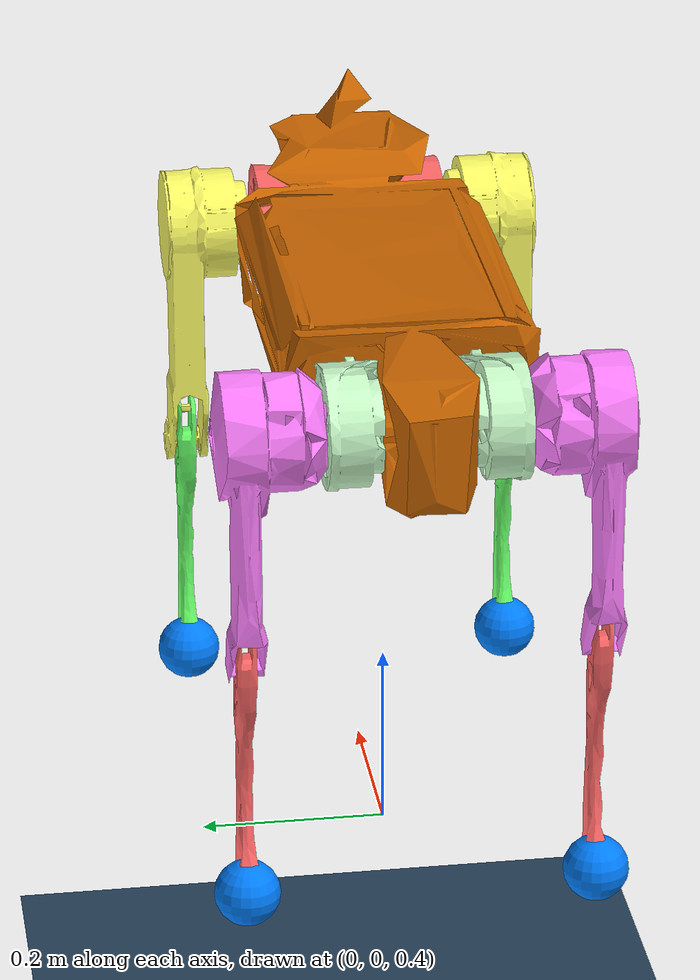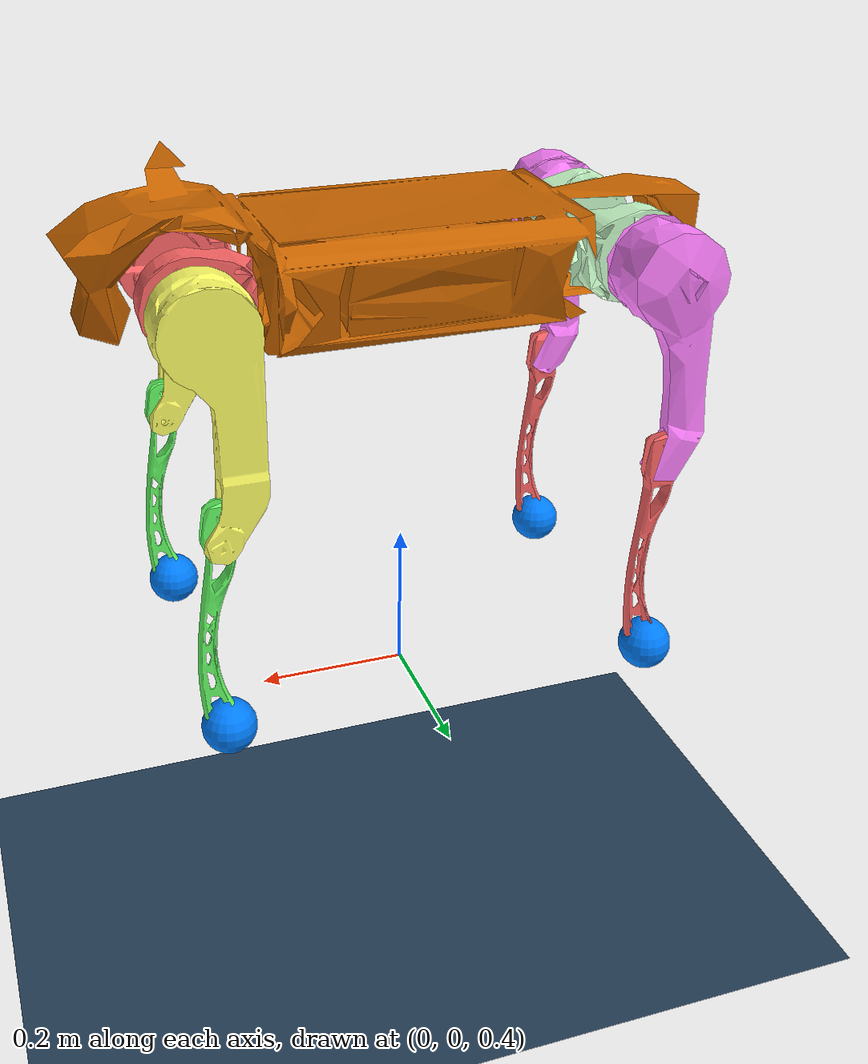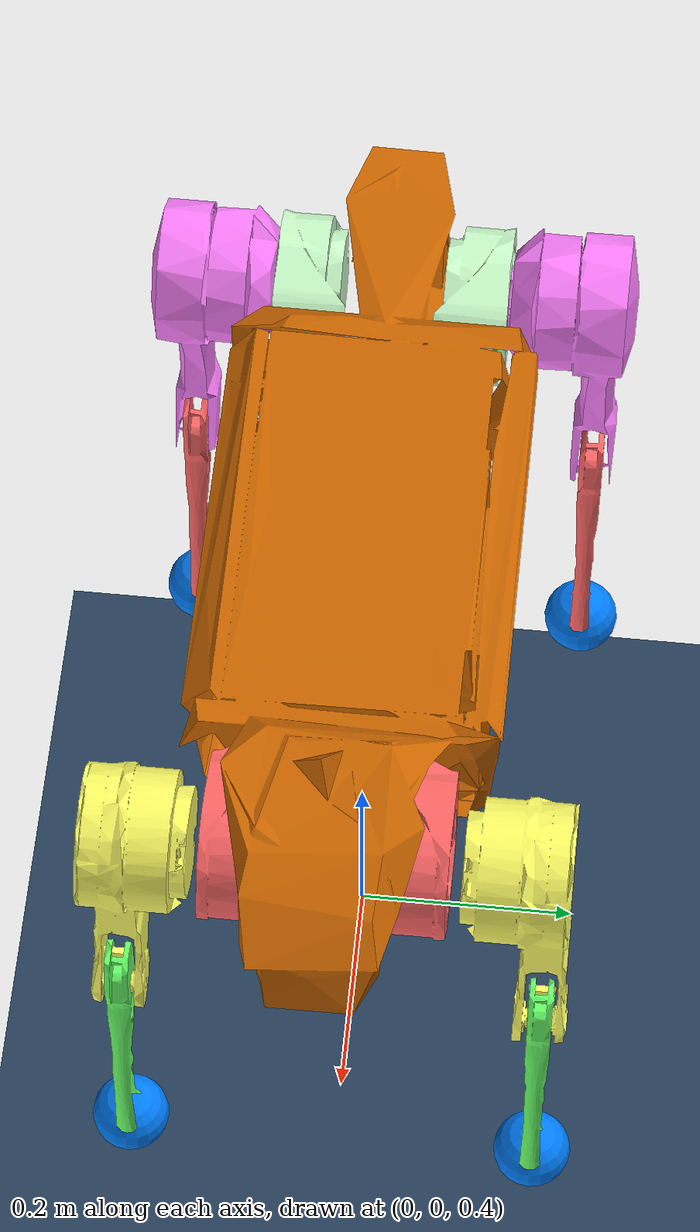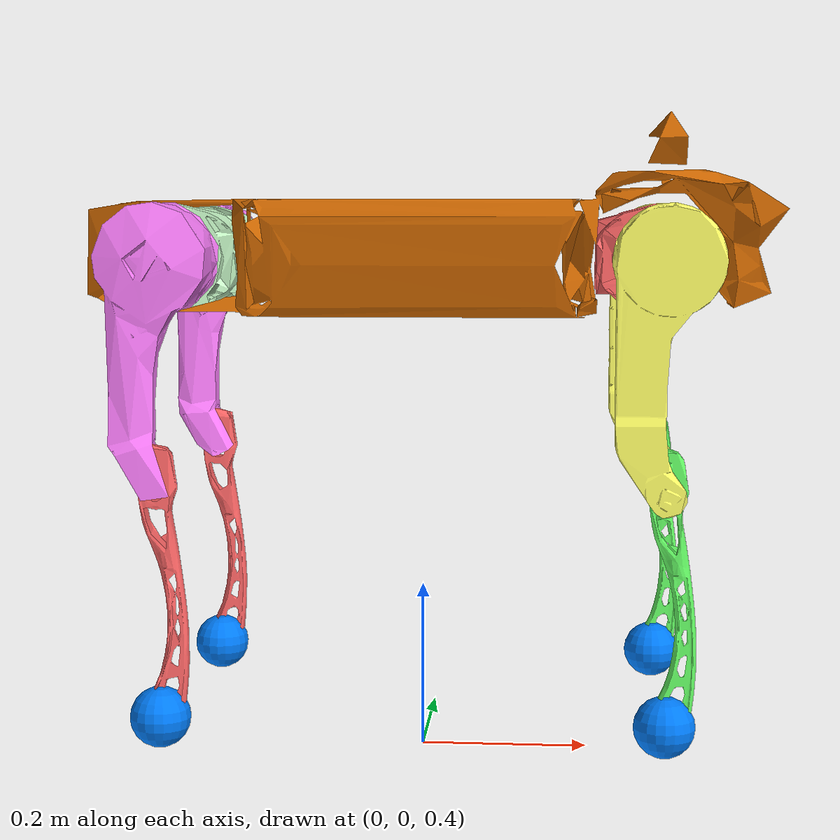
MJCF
<mujoco model="JLL_ROBOT">
    <compiler angle='radian' eulerseq="XYZ" meshdir="../meshes/" autolimits="true" />
    <option timestep="0.001" integrator="RK4" />

    <asset>
        <texture type="skybox" builtin="gradient" rgb1=".3 .5 .7" rgb2="0 0 0" width="32"
            height="512" />
        <texture name="body" type="cube" builtin="flat" mark="cross" width="127" height="1278"
            rgb1="0.8 0.6 0.4" rgb2="0.8 0.6 0.4" markrgb="1 1 1" random="0.01" />
        <material name="body" texture="body" texuniform="true" rgba="0.8 0.6 .4 1" />
        <texture name="grid" type="2d" builtin="checker" width="512" height="512" rgb1=".1 .2 .3"
            rgb2=".2 .3 .4" />
        <material name="grid" texture="grid" texrepeat="1 1" texuniform="true" reflectance=".2" />
    </asset>

    <asset>
        <mesh name="base_link_mesh_visual" file="../meshes/trunk.STL" scale='1 1 1' />
        <mesh name="base_link_mesh_collision" file="../meshes/trunk.STL" scale='1 1 1' />
        <mesh name="left_front_abad_mesh_visual" file="../meshes/FL_abd_link.STL" scale='1 1 1' />
        <mesh name="left_front_abad_mesh_collision" file="../meshes/FL_abd_link.STL" scale='1 1 1' />
        <mesh name="left_front_hip_mesh_visual" file="../meshes/FL_hip_link.STL" scale='1 1 1' />
        <mesh name="left_front_hip_mesh_collision" file="../meshes/FL_hip_link.STL" scale='1 1 1' />
        <mesh name="left_front_knee_mesh_visual" file="../meshes/FL_knee_link.STL" scale='1 1 1' />
        <mesh name="left_front_knee_mesh_collision" file="../meshes/FL_knee_link.STL" scale='1 1 1' />
        <mesh name="left_rear_abad_mesh_visual" file="../meshes/RL_abd_link.STL" scale='1 1 1' />
        <mesh name="left_rear_abad_mesh_collision" file="../meshes/RL_abd_link.STL" scale='1 1 1' />
        <mesh name="left_rear_hip_mesh_visual" file="../meshes/RL_hip_link.STL" scale='1 1 1' />
        <mesh name="left_rear_hip_mesh_collision" file="../meshes/RL_hip_link.STL" scale='1 1 1' />
        <mesh name="left_rear_knee_mesh_visual" file="../meshes/RL_knee_link.STL" scale='1 1 1' />
        <mesh name="left_rear_knee_mesh_collision" file="../meshes/RL_knee_link.STL" scale='1 1 1' />
        <mesh name="right_front_abad_mesh_visual" file="../meshes/FL_abd_link.STL"
            scale='1.0 -1.0 1.0' />
        <mesh name="right_front_abad_mesh_collision" file="../meshes/FL_abd_link.STL"
            scale='1.0 -1.0 1.0' />
        <mesh name="right_front_hip_mesh_visual" file="../meshes/FL_hip_link.STL"
            scale='1.0 -1.0 1.0' />
        <mesh name="right_front_hip_mesh_collision" file="../meshes/FL_hip_link.STL"
            scale='1.0 -1.0 1.0' />
        <mesh name="right_front_knee_mesh_visual" file="../meshes/FL_knee_link.STL"
            scale='1.0 -1.0 1.0' />
        <mesh name="right_front_knee_mesh_collision" file="../meshes/FL_knee_link.STL"
            scale='1.0 -1.0 1.0' />
        <mesh name="right_rear_abad_mesh_visual" file="../meshes/RL_abd_link.STL"
            scale='1.0 -1.0 1.0' />
        <mesh name="right_rear_abad_mesh_collision" file="../meshes/RL_abd_link.STL"
            scale='1.0 -1.0 1.0' />
        <mesh name="right_rear_hip_mesh_visual" file="../meshes/RL_hip_link.STL"
            scale='1.0 -1.0 1.0' />
        <mesh name="right_rear_hip_mesh_collision" file="../meshes/RL_hip_link.STL"
            scale='1.0 -1.0 1.0' />
        <mesh name="right_rear_knee_mesh_visual" file="../meshes/RL_knee_link.STL"
            scale='1.0 -1.0 1.0' />
        <mesh name="right_rear_knee_mesh_collision" file="../meshes/RL_knee_link.STL"
            scale='1.0 -1.0 1.0' />
        <!-- asset auto generate -->
    </asset>

    <worldbody>
        <geom name="floor" type="plane" size="0 0 0.05" material="grid" />
        <light pos="0 0 1.5" dir="0 0 -1" directional="true" />

        <body name='base_link' pos='0 0 1.0' euler='0 0 0'>
            <inertial pos="0.01435 0.0040863 0.0010607" mass="16.057"
                fullinertia="0.082348 0.407373 0.445820 0.000713 0.022641 -0.000244" />
            <freejoint />
            <site name="imu" size="0.01" pos="0 0 0" />
            <geom type='mesh' mesh='base_link_mesh_visual' pos='0 0 0' euler='0 0 0'
                rgba="0.8 0.4 0 1" />
            <geom type='mesh' mesh='base_link_mesh_collision' pos='0 0 0' euler='0 0 0' contype="0"
                conaffinity="0" group="1" density="0" />
            <!-- base_link site geom -->

            <body name='left_front_abad' pos='0.2065 0.065 0' euler='0 0 0'>
                <inertial pos="0.074261 0.010662 0.00797" mass="1.748"
                    fullinertia="0.000667447 0.00144482 0.00107312 -7.2909e-05 -1.0214e-05 5.08e-08" />
                <joint name='FL_abd_joint' type='hinge' axis='1 0 0' limited='true'
                    range='-0.80285 0.80285' damping='1' />
                <geom type='mesh' mesh='left_front_abad_mesh_visual' pos='0 0 0' euler='0 0 0'
                    rgba="1 0.4 0.4 1" />
                <geom type='mesh' mesh='left_front_abad_mesh_collision' pos='0 0 0' euler='0 0 0'
                    contype="0" conaffinity="0" group="1" density="0" />
                <!-- left_front_abad site geom -->

                <body name='left_front_hip' pos='0.08 0.119 0' euler='0 0 0'>
                    <inertial pos="-0.0014 -0.0344 -0.0174" mass="2.22606"
                        fullinertia="0.009416249 0.0090907891 0.0023041271 0.0001223515 -0.0004705786 0.0013313752" />
                    <joint name='FL_hip_joint' type='hinge' axis='0 1 0' limited='true'
                        range='-1.0472 4.1888' damping='1' />
                    <geom type='mesh' mesh='left_front_hip_mesh_visual' pos='0 0 0' euler='0 0 0'
                        rgba="1 1 0.4 1" />
                    <geom type='mesh' mesh='left_front_hip_mesh_collision' pos='0 0 0' euler='0 0 0'
                        contype="0" conaffinity="0" group="1" density="0" />
                    <!-- left_front_hip site geom -->

                    <body name='left_front_knee' pos='0 0.01 -0.26' euler='0 0 0'>
                        <inertial pos="0.0034 -0.0105 -0.13" mass="0.3261"
                            fullinertia="0.0046064111 0.0046485626 8.17992e-05 -9.9e-09 1.8937e-06 -4.4248e-06" />
                        <joint name='FL_knee_joint' type='hinge' axis='0 1 0' limited='true'
                            range='-2.6965 -0.9163' damping='1' />
                        <geom type='mesh' mesh='left_front_knee_mesh_visual' pos='0 0 0'
                            euler='0 0 0' rgba="0.4 1 0.4 1" friction="0.7 0.02 0.01" />
                        <geom type='mesh' mesh='left_front_knee_mesh_collision' pos='0 0 0'
                            euler='0 0 0' contype="0" conaffinity="0" group="1" density="0"
                            friction="0.7 0.02 0.01" />
                        <!-- left_front_knee site geom -->

                        <body name='FL_foot_link' pos='0.0 -0.01 -0.26149' euler='0 0 0'>
                            <inertial pos="0 0 0" mass="0.000204873572147578"
                                fullinertia="1.09600066619755e-09 1.09600066619755e-09 1.09600066619755e-09 0 0 0" />
                            <geom type='sphere' size='0.035'
                                euler='0 0 0' rgba='0 0.5 1 1' />
                            <geom type='sphere' size='0.035'
                                euler='0 0 0' contype="0" conaffinity="0" group="1" density="0" />
                        </body>
                        <!-- left_front_knee child body -->
                    </body>
                    <!-- left_front_hip child body -->
                </body>
                <!-- left_front_abad child body -->
            </body>

            <body name='left_rear_abad' pos='-0.2065 0.065 0' euler='0 0 0'>
                <inertial pos="0.074261 0.010662 0.00797" mass="1.748"
                    fullinertia="0.000667447 0.00144482 0.00107312 7.2909e-05 1.0214e-05 5.08e-08" />
                <joint name='HL_abd_joint' type='hinge' axis='1 0 0' limited='true'
                    range='-0.80285 0.80285' damping='1' />
                <geom type='mesh' mesh='left_rear_abad_mesh_visual' pos='0 0 0' euler='0 0 0'
                    rgba="0.8 1.0 0.8 1" />
                <geom type='mesh' mesh='left_rear_abad_mesh_collision' pos='0 0 0' euler='0 0 0'
                    contype="0" conaffinity="0" group="1" density="0" />
                <!-- left_rear_abad site geom -->

                <body name='left_rear_hip' pos='-0.08 0.119 0' euler='0 0 0'>
                    <inertial pos="-0.0014 -0.0344 -0.0174" mass="2.22606"
                        fullinertia="0.009416249 0.0090907891 0.0023041271 0.0001223515 -0.0004705786 0.0013313752" />
                    <joint name='HL_hip_joint' type='hinge' axis='0 1 0' limited='true'
                        range='-1.0472 4.1888' damping='1' />
                    <geom type='mesh' mesh='left_rear_hip_mesh_visual' pos='0 0 0' euler='0 0 0'
                        rgba="1 0.5 1 1" />
                    <geom type='mesh' mesh='left_rear_hip_mesh_collision' pos='0 0 0' euler='0 0 0'
                        contype="0" conaffinity="0" group="1" density="0" />
                    <!-- left_rear_hip site geom -->

                    <body name='left_rear_knee' pos='0 0.01 -0.26' euler='0 0 0'>
                        <inertial pos="0.0034 -0.0105 -0.13" mass="0.3261"
                            fullinertia="0.0046064111 0.0046485626 8.17992e-05 -9.9e-09 1.8937e-06 -4.4248e-06" />
                        <joint name='HL_knee_joint' type='hinge' axis='0 1 0' limited='true'
                            range='-2.6965 -0.9163' damping='1' />
                        <geom type='mesh' mesh='left_rear_knee_mesh_visual' pos='0 0 0'
                            euler='0 0 0' rgba="1 0.4 0.4 1" />
                        <geom type='mesh' mesh='left_rear_knee_mesh_collision' pos='0 0 0'
                            euler='0 0 0' contype="0" conaffinity="0" group="1" density="0" />
                        <!-- left_rear_knee site geom -->

                        <body name='HL_foot_link' pos='0.0 -0.01 -0.26149' euler='0 0 0'>
                            <inertial pos="0 0 0" mass="0.000204873572147578"
                                fullinertia="1.09600066619755e-09 1.09600066619755e-09 1.09600066619755e-09 0 0 0" />
                            <geom type='sphere' size='0.035'
                                euler='0 0 0' rgba='0 0.5 1 1' friction="0.7 0.02 0.01" />
                            <geom type='sphere' size='0.035'
                                euler='0 0 0' contype="0" conaffinity="0" group="1" density="0"
                                friction="0.7 0.02 0.01" />
                        </body>
                        <!-- left_rear_knee child body -->
                    </body>
                    <!-- left_rear_hip child body -->
                </body>
                <!-- left_rear_abad child body -->
            </body>

            <body name='right_front_abad' pos='0.2065 -0.065 0.0' euler='-0.0 0.0 -0.0'>
                <inertial pos="0.074261 -0.010662 0.00797" mass="1.748"
                    fullinertia="0.000667447 0.00144482 0.00107312 7.2909e-05 -1.0214e-05 -5.08e-08" />
                <joint name='FR_abd_joint' type='hinge' axis='1 0 0' limited='true'
                    range='-0.80285 0.80285' damping='1' />
                <geom type='mesh' mesh='right_front_abad_mesh_visual' pos='0 0 0' euler='0 0 0'
                    rgba="1 0.4 0.4 1" />
                <geom type='mesh' mesh='right_front_abad_mesh_collision' pos='0 0 0' euler='0 0 0'
                    contype="0" conaffinity="0" group="1" density="0" />
                <!-- right_front_abad site geom -->

                <body name='right_front_hip' pos='0.08 -0.119 0.0' euler='-0.0 0.0 -0.0'>
                    <inertial pos="-0.0014 0.0344 -0.0174" mass="2.22606"
                        fullinertia="0.009416249 0.0090907891 0.0023041271 -0.0001223515 -0.0004705786 -0.0013313752" />
                    <joint name='FR_hip_joint' type='hinge' axis='0 1 0' limited='true'
                        range='-1.0472 4.1888' damping='1' />
                    <geom type='mesh' mesh='right_front_hip_mesh_visual' pos='0 0 0' euler='0 0 0'
                        rgba="1 1 0.4 1" />
                    <geom type='mesh' mesh='right_front_hip_mesh_collision' pos='0 0 0'
                        euler='0 0 0' contype="0" conaffinity="0" group="1" density="0" />
                    <!-- right_front_hip site geom -->

                    <body name='right_front_knee' pos='0.0 -0.01 -0.26' euler='-0.0 0.0 -0.0'>
                        <inertial pos="0.0034 0.0105 -0.13" mass="0.3261"
                            fullinertia="0.0046064111 0.0046485626 8.17992e-05 9.9e-09 1.8937e-06 4.4248e-06" />
                        <joint name='FR_knee_joint' type='hinge' axis='0 1 0'
                            limited='true' range='-2.6965 -0.9163' damping='1' />
                        <geom type='mesh' mesh='right_front_knee_mesh_visual' pos='0 0 0'
                            euler='0 0 0' rgba="0.4 1 0.4 1" />
                        <geom type='mesh' mesh='right_front_knee_mesh_collision' pos='0 0 0'
                            euler='0 0 0' contype="0" conaffinity="0" group="1" density="0" />
                        <!-- right_front_knee site geom -->

                        <body name='FR_foot_link' pos='0.0 0.01 -0.26149'
                            euler='-0.0 0.0 -0.0'>
                            <inertial pos="0.0 -0.0 0.0" mass="0.000204873572147578"
                                fullinertia="1.09600066619755e-09 1.09600066619755e-09 1.09600066619755e-09 -0.0 0.0 -0.0" />
                            <geom type='sphere' size='0.035'
                                euler='0 0 0' rgba='0 0.5 1 1' friction="0.7 0.02 0.01" />
                            <geom type='sphere' size='0.035'
                                euler='0 0 0' contype="0" conaffinity="0" group="1" density="0"
                                friction="0.7 0.02 0.01" />
                        </body>
                        <!-- right_front_knee child body -->
                    </body>
                    <!-- right_front_hip child body -->
                </body>
                <!-- right_front_abad child body -->
            </body>

            <body name='right_rear_abad' pos='-0.2065 -0.065 0.0' euler='-0.0 0.0 -0.0'>
                <inertial pos="0.074261 -0.010662 0.00797" mass="1.748"
                    fullinertia="0.000667447 0.00144482 0.00107312 -7.2909e-05 1.0214e-05 -5.08e-08" />
                <joint name='HR_abd_joint' type='hinge' axis='1 0 0' limited='true'
                    range='-0.80285 0.80285' damping='1' />
                <geom type='mesh' mesh='right_rear_abad_mesh_visual' pos='0 0 0' euler='0 0 0'
                    rgba="0.8 1.0 0.8 1" />
                <geom type='mesh' mesh='right_rear_abad_mesh_collision' pos='0 0 0' euler='0 0 0'
                    contype="0" conaffinity="0" group="1" density="0" />
                <!-- right_rear_abad site geom -->

                <body name='right_rear_hip' pos='-0.08 -0.119 0.0' euler='-0.0 0.0 -0.0'>
                    <inertial pos="-0.0014 0.0344 -0.0174" mass="2.22606"
                        fullinertia="0.009416249 0.0090907891 0.0023041271 -0.0001223515 -0.0004705786 -0.0013313752" />
                    <joint name='HR_hip_joint' type='hinge' axis='0 1 0' limited='true'
                        range='-1.0472 4.1888' damping='1' />
                    <geom type='mesh' mesh='right_rear_hip_mesh_visual' pos='0 0 0' euler='0 0 0'
                        rgba="1 0.5 1 1" />
                    <geom type='mesh' mesh='right_rear_hip_mesh_collision' pos='0 0 0' euler='0 0 0'
                        contype="0" conaffinity="0" group="1" density="0" />
                    <!-- right_rear_hip site geom -->

                    <body name='right_rear_knee' pos='0.0 -0.01 -0.26' euler='-0.0 0.0 -0.0'>
                        <inertial pos="0.0034 0.0105 -0.13" mass="0.3261"
                            fullinertia="0.0046064111 0.0046485626 8.17992e-05 9.9e-09 1.8937e-06 4.4248e-06" />
                        <joint name='HR_knee_joint' type='hinge' axis='0 1 0' limited='true'
                            range='-2.6965 -0.9163' damping='1' />
                        <geom type='mesh' mesh='right_rear_knee_mesh_visual' pos='0 0 0'
                            euler='0 0 0' rgba="1 0.4 0.4 1" />
                        <geom type='mesh' mesh='right_rear_knee_mesh_collision' pos='0 0 0'
                            euler='0 0 0' contype="0" conaffinity="0" group="1" density="0" />
                        <!-- right_rear_knee site geom -->

                        <body name='HR_foot_link' pos='0.0 0.01 -0.26149'
                            euler='-0.0 0.0 -0.0'>
                            <inertial pos="0.0 -0.0 0.0" mass="0.000204873572147578"
                                fullinertia="1.09600066619755e-09 1.09600066619755e-09 1.09600066619755e-09 -0.0 0.0 -0.0" />
                            <geom type='sphere' size='0.035'
                                euler='0 0 0' rgba='0 0.5 1 1' friction="0.7 0.02 0.01" />
                            <geom type='sphere' size='0.035'
                                euler='0 0 0' contype="0" conaffinity="0" group="1" density="0"
                                friction="0.7 0.02 0.01" />
                        </body>
                        <!-- right_rear_knee child body -->
                    </body>
                    <!-- right_rear_hip child body -->
                </body>
                <!-- right_rear_abad child body -->
            </body>
            <!-- base_link child body -->
        </body>
        <!-- world child body -->
    </worldbody>

    <actuator>
        <motor name='FL_abd_joint' joint='FL_abd_joint' ctrlrange='-100 100' />
        <motor name='FL_hip_joint' joint='FL_hip_joint' ctrlrange='-100 100' />
        <motor name='FL_knee_joint' joint='FL_knee_joint' ctrlrange='-150 150' />
        <motor name='HL_abd_joint' joint='HL_abd_joint' ctrlrange='-100 100' />
        <motor name='HL_hip_joint' joint='HL_hip_joint' ctrlrange='-100 100' />
        <motor name='HL_knee_joint' joint='HL_knee_joint' ctrlrange='-150 150' />
        <motor name='FR_abd_joint' joint='FR_abd_joint' ctrlrange='-100 100' />
        <motor name='FR_hip_joint' joint='FR_hip_joint' ctrlrange='-100 100' />
        <motor name='FR_knee_joint' joint='FR_knee_joint' ctrlrange='-150 150' />
        <motor name='HR_abd_joint' joint='HR_abd_joint' ctrlrange='-100 100' />
        <motor name='HR_hip_joint' joint='HR_hip_joint' ctrlrange='-100 100' />
        <motor name='HR_knee_joint' joint='HR_knee_joint' ctrlrange='-150 150' />
        <!-- actuator auto generate -->
    </actuator>

    <sensor>
        <framequat name="body-orientation" objtype="site" objname="imu" />
        <gyro name="body-angular-velocity" site="imu" />
        <framepos name="body-linear-pos" objtype="site" objname="imu" />
        <velocimeter name="body-linear-vel" site="imu" />
        <accelerometer name="body-linear-acceleration" site="imu" />
    </sensor>

    <contact>
        <exclude body1="base_link" body2="left_front_abad" />
        <exclude body1="base_link" body2="left_rear_abad" />
        <exclude body1="base_link" body2="right_front_abad" />
        <exclude body1="base_link" body2="right_rear_abad" />
        <exclude body1="left_front_abad" body2="left_front_hip" />
        <exclude body1="left_rear_abad" body2="left_rear_hip" />
        <exclude body1="right_front_abad" body2="right_front_hip" />
        <exclude body1="right_rear_abad" body2="right_rear_hip" />
        <exclude body1="base_link" body2="left_front_hip" />
        <exclude body1="base_link" body2="left_rear_hip" />
        <exclude body1="base_link" body2="right_front_hip" />
        <exclude body1="base_link" body2="right_rear_hip" />
    </contact>

    <keyframe>
        <key name="stand"
            qpos="0 0 0.38 1 0 0 0 0 0.72 -1.44 0 0.72 -1.44 0 0.72 -1.44 0 0.72 -1.44" />
        <key
            qpos='0 0 0.1 1 0 0 0 0.5 1 -2.7 0.5 1 -2.7 -0.5 1 -2.7 -0.5 1 -2.7' />
    </keyframe>
</mujoco>
